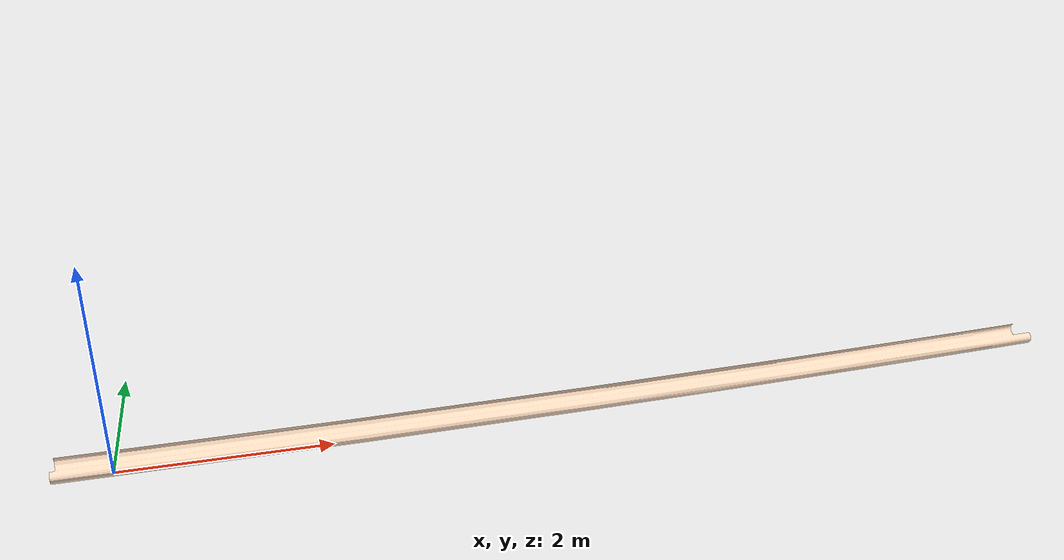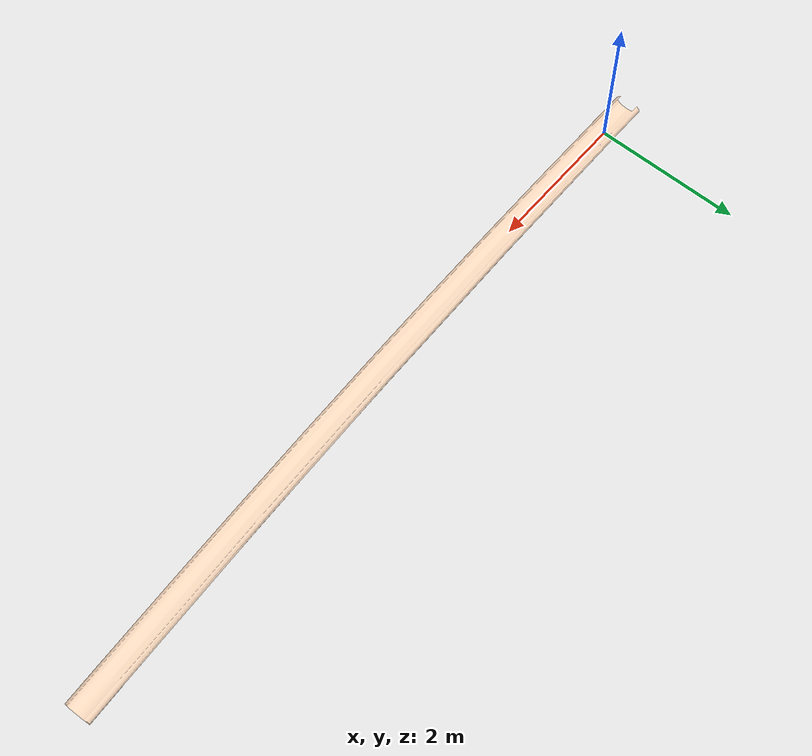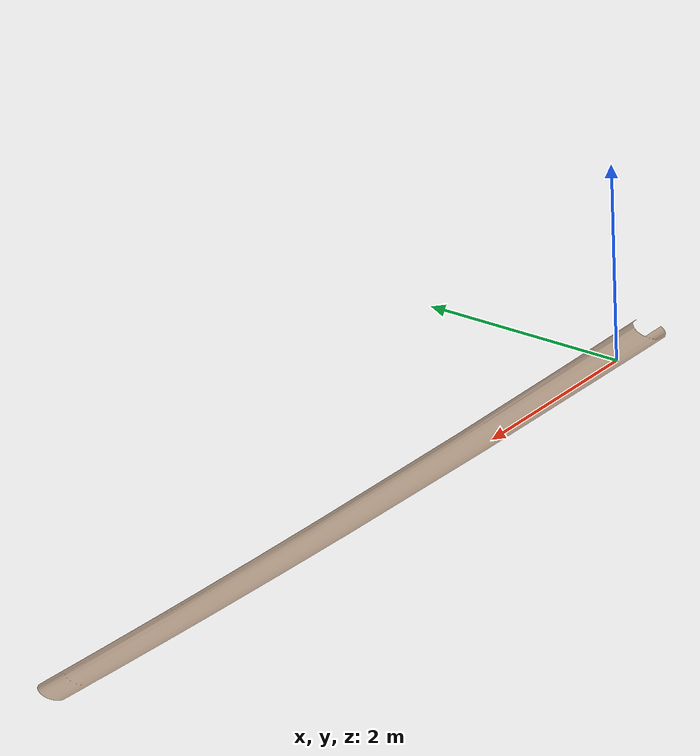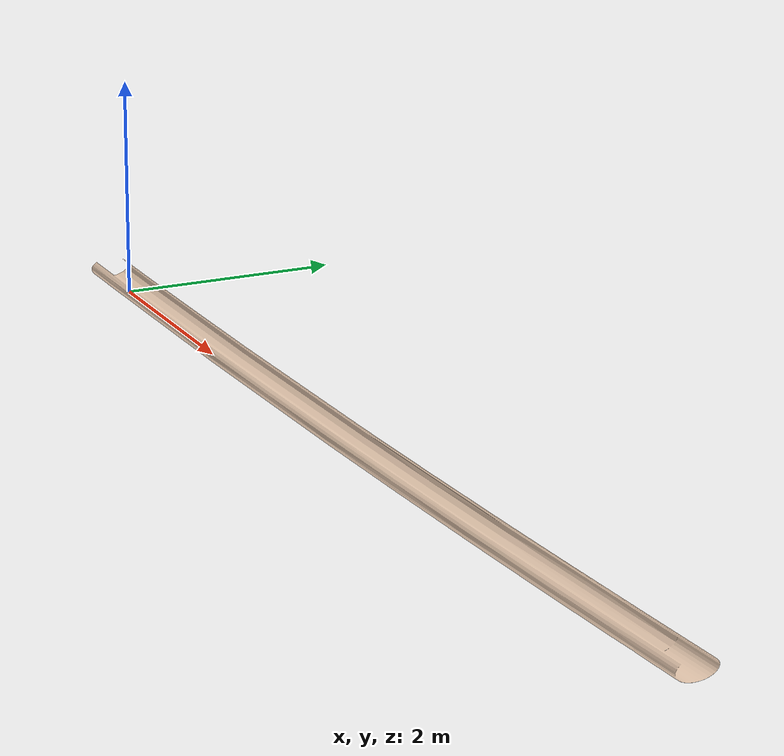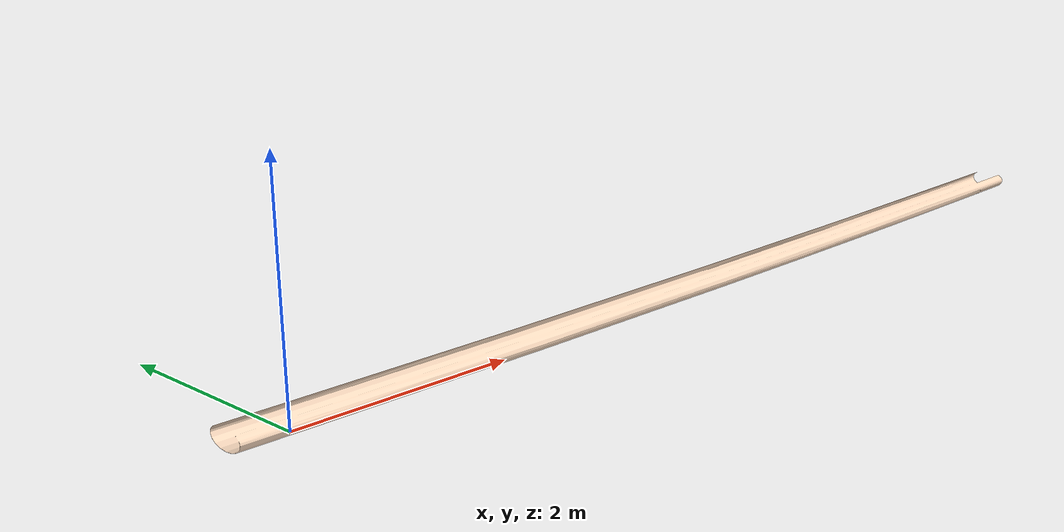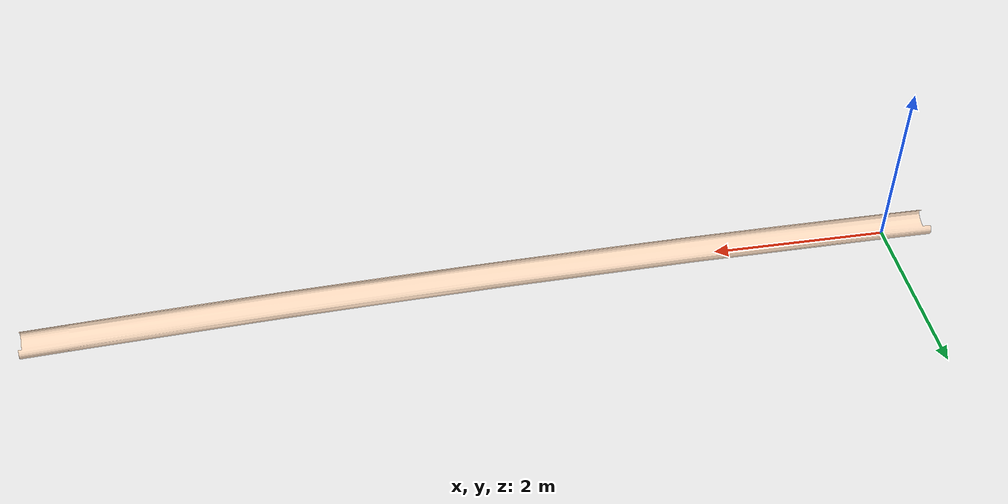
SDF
<?xml version='1.0'?>
<sdf version='1.4'>
  <model name="dipole_chamber">
    <static>true</static>

      <link name='modul1'>

        <collision name='modul1_collision'>
          <pose>0.0 0 0.1 0 3.1415 -1.570796</pose>
          <geometry>
            <mesh>
              <uri>model://dipole_chamber/meshes/dipole.dae</uri>
              <scale>0.003 0.003 0.003</scale>
            </mesh>
          </geometry>
        </collision>

        <visual name='modul1_visual'>
          <pose>0.0 0 0.1 0 3.1415 -1.570796</pose>
          <geometry>
            <mesh>
              <uri>model://dipole_chamber/meshes/dipole.dae</uri>
              <scale>0.003 0.003 0.003</scale>
            </mesh>
          </geometry>
        </visual>
      </link>

  </model>
</sdf>
